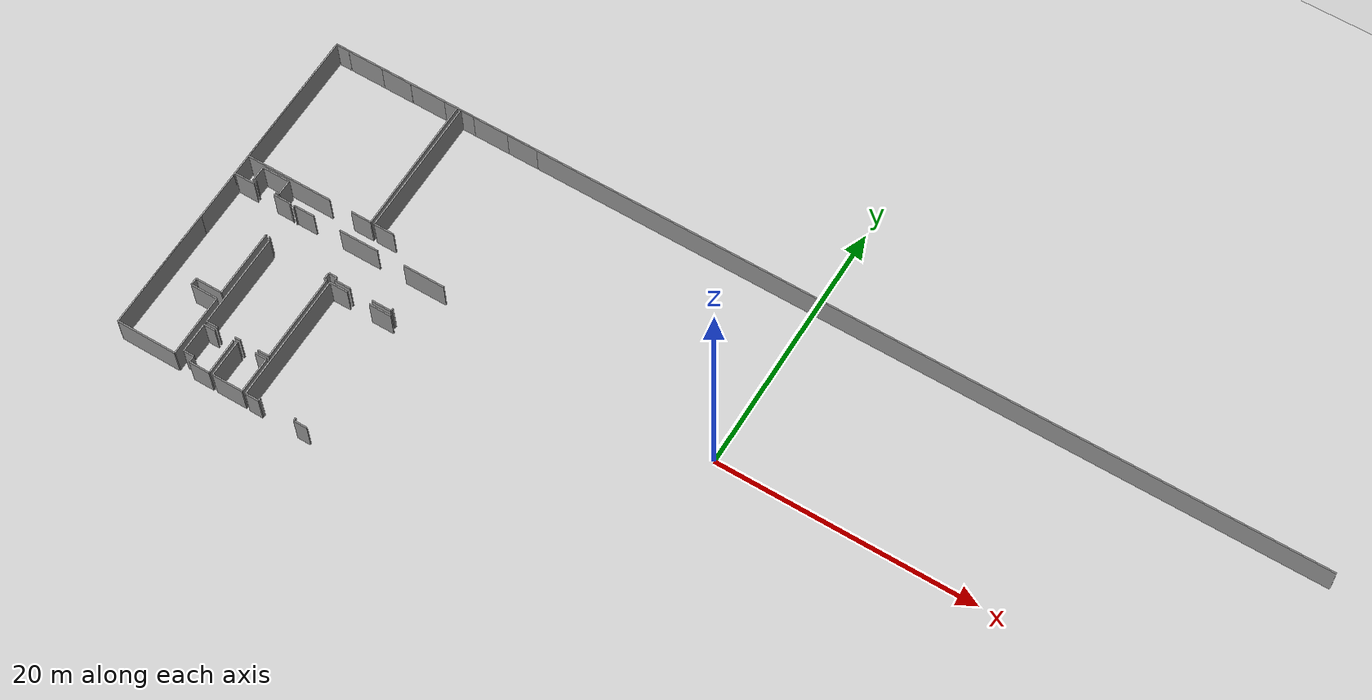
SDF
<sdf version="1.6">
 <world name="default">
  <model name="ground_plane">
   <static>1</static>
   <link name="link">
    <collision name="collision">
     <geometry><plane><normal>0 0 1</normal><size>100 100</size></plane></geometry>
     <surface><friction><ode><mu>100</mu><mu2>50</mu2></ode></friction></surface>
    </collision>
    <visual name="visual">
     <cast_shadows>0</cast_shadows>
     <geometry><plane><normal>0 0 1</normal><size>100 100</size></plane></geometry>
     <material>
      <script><uri>file://media/materials/scripts/gazebo.material</uri><name>Gazebo/Grey</name></script>
     </material>
    </visual>
   </link>
  </model>
  <model name="0510030968_A-40">
   <static>1</static>
   <link name="Wall_0">
    <collision name="Wall_0_Collision">
     <geometry><box><size>1.58504516178 0.1 2.5</size></box></geometry>
     <pose>0.792522580891 0 1.25 0 0 0</pose>
    </collision>
    <visual name="Wall_0_Visual">
     <pose>0.792522580891 0 1.25 0 0 0</pose>
     <geometry><box><size>1.58504516178 0.1 2.5</size></box></geometry>
     <material>
      <script><uri>file://media/materials/scripts/gazebo.material</uri><name>Gazebo/Grey</name></script>
      <ambient>1 1 1 1</ambient>
     </material>
    </visual>
    <pose>10.125385876 -10.6663109621 0 0 0 3.14159265359</pose>
   </link>
   <link name="Wall_1">
    <collision name="Wall_1_Collision">
     <geometry><box><size>6.75495763304 0.1 2.5</size></box></geometry>
     <pose>3.37747881652 0 1.25 0 0 0</pose>
    </collision>
    <visual name="Wall_1_Visual">
     <pose>3.37747881652 0 1.25 0 0 0</pose>
     <geometry><box><size>6.75495763304 0.1 2.5</size></box></geometry>
     <material>
      <script><uri>file://media/materials/scripts/gazebo.material</uri><name>Gazebo/Grey</name></script>
      <ambient>1 1 1 1</ambient>
     </material>
    </visual>
    <pose>6.76575580878 -10.6663109621 0 0 0 3.14159265359</pose>
   </link>
   <link name="Wall_2">
    <collision name="Wall_2_Collision">
     <geometry><box><size>10.658561683 0.1 2.5</size></box></geometry>
     <pose>5.3292808415 0 1.25 0 0 0</pose>
    </collision>
    <visual name="Wall_2_Visual">
     <pose>5.3292808415 0 1.25 0 0 0</pose>
     <geometry><box><size>10.658561683 0.1 2.5</size></box></geometry>
     <material>
      <script><uri>file://media/materials/scripts/gazebo.material</uri><name>Gazebo/Grey</name></script>
      <ambient>1 1 1 1</ambient>
     </material>
    </visual>
    <pose>0.0107981757435 -10.6663109621 0 0 0 1.57079632679</pose>
   </link>
   <link name="Wall_3">
    <collision name="Wall_3_Collision">
     <geometry><box><size>1.02646188244 0.1 2.5</size></box></geometry>
     <pose>0.51323094122 0 1.25 0 0 0</pose>
    </collision>
    <visual name="Wall_3_Visual">
     <pose>0.51323094122 0 1.25 0 0 0</pose>
     <geometry><box><size>1.02646188244 0.1 2.5</size></box></geometry>
     <material>
      <script><uri>file://media/materials/scripts/gazebo.material</uri><name>Gazebo/Grey</name></script>
      <ambient>1 1 1 1</ambient>
     </material>
    </visual>
    <pose>0.0107981757435 -0.00774927906297 0 0 0 0.0</pose>
   </link>
   <link name="Wall_4">
    <collision name="Wall_4_Collision">
     <geometry><box><size>2.39516241727 0.1 2.5</size></box></geometry>
     <pose>1.19758120863 0 1.25 0 0 0</pose>
    </collision>
    <visual name="Wall_4_Visual">
     <pose>1.19758120863 0 1.25 0 0 0</pose>
     <geometry><box><size>2.39516241727 0.1 2.5</size></box></geometry>
     <material>
      <script><uri>file://media/materials/scripts/gazebo.material</uri><name>Gazebo/Grey</name></script>
      <ambient>1 1 1 1</ambient>
     </material>
    </visual>
    <pose>3.835130912 -0.00774927906297 0 0 0 0.0</pose>
   </link>
   <link name="Wall_5">
    <collision name="Wall_5_Collision">
     <geometry><box><size>1.06546235248 0.1 2.5</size></box></geometry>
     <pose>0.532731176239 0 1.25 0 0 0</pose>
    </collision>
    <visual name="Wall_5_Visual">
     <pose>0.532731176239 0 1.25 0 0 0</pose>
     <geometry><box><size>1.06546235248 0.1 2.5</size></box></geometry>
     <material>
      <script><uri>file://media/materials/scripts/gazebo.material</uri><name>Gazebo/Grey</name></script>
      <ambient>1 1 1 1</ambient>
     </material>
    </visual>
    <pose>9.03680272368 -0.00774927906297 0 0 0 0.0</pose>
   </link>
   <link name="Wall_6">
    <collision name="Wall_6_Collision">
     <geometry><box><size>10.65858676 0.1 2.5</size></box></geometry>
     <pose>5.32929338002 0 1.25 0 0 0</pose>
    </collision>
    <visual name="Wall_6_Visual">
     <pose>5.32929338002 0 1.25 0 0 0</pose>
     <geometry><box><size>10.65858676 0.1 2.5</size></box></geometry>
     <material>
      <script><uri>file://media/materials/scripts/gazebo.material</uri><name>Gazebo/Grey</name></script>
      <ambient>1 1 1 1</ambient>
     </material>
    </visual>
    <pose>10.1022650762 -0.00774927906297 0 0 0 -1.56862710695</pose>
   </link>
   <link name="Wall_7">
    <collision name="Wall_7_Collision">
     <geometry><box><size>0.275925149586 0.1 2.5</size></box></geometry>
     <pose>0.137962574793 0 1.25 0 0 0</pose>
    </collision>
    <visual name="Wall_7_Visual">
     <pose>0.137962574793 0 1.25 0 0 0</pose>
     <geometry><box><size>0.275925149586 0.1 2.5</size></box></geometry>
     <material>
      <script><uri>file://media/materials/scripts/gazebo.material</uri><name>Gazebo/Grey</name></script>
      <ambient>1 1 1 1</ambient>
     </material>
    </visual>
    <pose>3.52630308574 -12.0571159978 0 0 0 3.14159265359</pose>
   </link>
   <link name="Wall_8">
    <collision name="Wall_8_Collision">
     <geometry><box><size>0.254074723376 0.1 2.5</size></box></geometry>
     <pose>0.127037361688 0 1.25 0 0 0</pose>
    </collision>
    <visual name="Wall_8_Visual">
     <pose>0.127037361688 0 1.25 0 0 0</pose>
     <geometry><box><size>0.254074723376 0.1 2.5</size></box></geometry>
     <material>
      <script><uri>file://media/materials/scripts/gazebo.material</uri><name>Gazebo/Grey</name></script>
      <ambient>1 1 1 1</ambient>
     </material>
    </visual>
    <pose>1.63382750867 -12.0571159978 0 0 0 3.14159265359</pose>
   </link>
   <link name="Wall_9">
    <collision name="Wall_9_Collision">
     <geometry><box><size>1.16505964404 0.1 2.5</size></box></geometry>
     <pose>0.582529822021 0 1.25 0 0 0</pose>
    </collision>
    <visual name="Wall_9_Visual">
     <pose>0.582529822021 0 1.25 0 0 0</pose>
     <geometry><box><size>1.16505964404 0.1 2.5</size></box></geometry>
     <material>
      <script><uri>file://media/materials/scripts/gazebo.material</uri><name>Gazebo/Grey</name></script>
      <ambient>1 1 1 1</ambient>
     </material>
    </visual>
    <pose>1.37975278529 -12.0571159978 0 0 0 1.57079632679</pose>
   </link>
   <link name="Wall_10">
    <collision name="Wall_10_Collision">
     <geometry><box><size>2.15404550478 0.1 2.5</size></box></geometry>
     <pose>1.07702275239 0 1.25 0 0 0</pose>
    </collision>
    <visual name="Wall_10_Visual">
     <pose>1.07702275239 0 1.25 0 0 0</pose>
     <geometry><box><size>2.15404550478 0.1 2.5</size></box></geometry>
     <material>
      <script><uri>file://media/materials/scripts/gazebo.material</uri><name>Gazebo/Grey</name></script>
      <ambient>1 1 1 1</ambient>
     </material>
    </visual>
    <pose>1.37975278529 -10.8920563538 0 0 0 0.0</pose>
   </link>
   <link name="Wall_11">
    <collision name="Wall_11_Collision">
     <geometry><box><size>1.16508375332 0.1 2.5</size></box></geometry>
     <pose>0.582541876662 0 1.25 0 0 0</pose>
    </collision>
    <visual name="Wall_11_Visual">
     <pose>0.582541876662 0 1.25 0 0 0</pose>
     <geometry><box><size>1.16508375332 0.1 2.5</size></box></geometry>
     <material>
      <script><uri>file://media/materials/scripts/gazebo.material</uri><name>Gazebo/Grey</name></script>
      <ambient>1 1 1 1</ambient>
     </material>
    </visual>
    <pose>3.53379829008 -10.8920563538 0 0 0 -1.57722956047</pose>
   </link>
   <link name="Wall_12">
    <collision name="Wall_12_Collision">
     <geometry><box><size>4.64728076527 0.1 2.5</size></box></geometry>
     <pose>2.32364038264 0 1.25 0 0 0</pose>
    </collision>
    <visual name="Wall_12_Visual">
     <pose>2.32364038264 0 1.25 0 0 0</pose>
     <geometry><box><size>4.64728076527 0.1 2.5</size></box></geometry>
     <material>
      <script><uri>file://media/materials/scripts/gazebo.material</uri><name>Gazebo/Grey</name></script>
      <ambient>1 1 1 1</ambient>
     </material>
    </visual>
    <pose>4.64728076527 -25.7094401463 0 0 0 3.14159265359</pose>
   </link>
   <link name="Wall_13">
    <collision name="Wall_13_Collision">
     <geometry><box><size>9.44433857998 0.1 2.5</size></box></geometry>
     <pose>4.72216928999 0 1.25 0 0 0</pose>
    </collision>
    <visual name="Wall_13_Visual">
     <pose>4.72216928999 0 1.25 0 0 0</pose>
     <geometry><box><size>9.44433857998 0.1 2.5</size></box></geometry>
     <material>
      <script><uri>file://media/materials/scripts/gazebo.material</uri><name>Gazebo/Grey</name></script>
      <ambient>1 1 1 1</ambient>
     </material>
    </visual>
    <pose>0.0 -25.7094401463 0 0 0 1.57079632679</pose>
   </link>
   <link name="Wall_14">
    <collision name="Wall_14_Collision">
     <geometry><box><size>0.189412706277 0.1 2.5</size></box></geometry>
     <pose>0.0947063531385 0 1.25 0 0 0</pose>
    </collision>
    <visual name="Wall_14_Visual">
     <pose>0.0947063531385 0 1.25 0 0 0</pose>
     <geometry><box><size>0.189412706277 0.1 2.5</size></box></geometry>
     <material>
      <script><uri>file://media/materials/scripts/gazebo.material</uri><name>Gazebo/Grey</name></script>
      <ambient>1 1 1 1</ambient>
     </material>
    </visual>
    <pose>0.0 -12.462873331 0 0 0 1.57079632679</pose>
   </link>
   <link name="Wall_15">
    <collision name="Wall_15_Collision">
     <geometry><box><size>1.63103268671 0.1 2.5</size></box></geometry>
     <pose>0.815516343357 0 1.25 0 0 0</pose>
    </collision>
    <visual name="Wall_15_Visual">
     <pose>0.815516343357 0 1.25 0 0 0</pose>
     <geometry><box><size>1.63103268671 0.1 2.5</size></box></geometry>
     <material>
      <script><uri>file://media/materials/scripts/gazebo.material</uri><name>Gazebo/Grey</name></script>
      <ambient>1 1 1 1</ambient>
     </material>
    </visual>
    <pose>0.0 -12.2734606248 0 0 0 0.0</pose>
   </link>
   <link name="Wall_16">
    <collision name="Wall_16_Collision">
     <geometry><box><size>1.37949871057 0.1 2.5</size></box></geometry>
     <pose>0.689749355285 0 1.25 0 0 0</pose>
    </collision>
    <visual name="Wall_16_Visual">
     <pose>0.689749355285 0 1.25 0 0 0</pose>
     <geometry><box><size>1.37949871057 0.1 2.5</size></box></geometry>
     <material>
      <script><uri>file://media/materials/scripts/gazebo.material</uri><name>Gazebo/Grey</name></script>
      <ambient>1 1 1 1</ambient>
     </material>
    </visual>
    <pose>3.24402606807 -12.2734606248 0 0 0 0.0</pose>
   </link>
   <link name="Wall_17">
    <collision name="Wall_17_Collision">
     <geometry><box><size>0.0923561619472 0.1 2.5</size></box></geometry>
     <pose>0.0461780809736 0 1.25 0 0 0</pose>
    </collision>
    <visual name="Wall_17_Visual">
     <pose>0.0461780809736 0 1.25 0 0 0</pose>
     <geometry><box><size>0.0923561619472 0.1 2.5</size></box></geometry>
     <material>
      <script><uri>file://media/materials/scripts/gazebo.material</uri><name>Gazebo/Grey</name></script>
      <ambient>1 1 1 1</ambient>
     </material>
    </visual>
    <pose>4.62352477864 -12.2734606248 0 0 0 -1.57079632679</pose>
   </link>
   <link name="Wall_18">
    <collision name="Wall_18_Collision">
     <geometry><box><size>5.23520967517 0.1 2.5</size></box></geometry>
     <pose>2.61760483758 0 1.25 0 0 0</pose>
    </collision>
    <visual name="Wall_18_Visual">
     <pose>2.61760483758 0 1.25 0 0 0</pose>
     <geometry><box><size>5.23520967517 0.1 2.5</size></box></geometry>
     <material>
      <script><uri>file://media/materials/scripts/gazebo.material</uri><name>Gazebo/Grey</name></script>
      <ambient>1 1 1 1</ambient>
     </material>
    </visual>
    <pose>4.62352477864 -15.132944599 0 0 0 -1.57079632679</pose>
   </link>
   <link name="Wall_19">
    <collision name="Wall_19_Collision">
     <geometry><box><size>2.06753306147 0.1 2.5</size></box></geometry>
     <pose>1.03376653074 0 1.25 0 0 0</pose>
    </collision>
    <visual name="Wall_19_Visual">
     <pose>1.03376653074 0 1.25 0 0 0</pose>
     <geometry><box><size>2.06753306147 0.1 2.5</size></box></geometry>
     <material>
      <script><uri>file://media/materials/scripts/gazebo.material</uri><name>Gazebo/Grey</name></script>
      <ambient>1 1 1 1</ambient>
     </material>
    </visual>
    <pose>4.62352477864 -20.3681542742 0 0 0 3.14159265359</pose>
   </link>
   <link name="Wall_20">
    <collision name="Wall_20_Collision">
     <geometry><box><size>0.538003226749 0.1 2.5</size></box></geometry>
     <pose>0.269001613374 0 1.25 0 0 0</pose>
    </collision>
    <visual name="Wall_20_Visual">
     <pose>0.269001613374 0 1.25 0 0 0</pose>
     <geometry><box><size>0.538003226749 0.1 2.5</size></box></geometry>
     <material>
      <script><uri>file://media/materials/scripts/gazebo.material</uri><name>Gazebo/Grey</name></script>
      <ambient>1 1 1 1</ambient>
     </material>
    </visual>
    <pose>2.55599171716 -20.3681542742 0 0 0 -1.57079632679</pose>
   </link>
   <link name="Wall_21">
    <collision name="Wall_21_Collision">
     <geometry><box><size>2.06524638896 0.1 2.5</size></box></geometry>
     <pose>1.03262319448 0 1.25 0 0 0</pose>
    </collision>
    <visual name="Wall_21_Visual">
     <pose>1.03262319448 0 1.25 0 0 0</pose>
     <geometry><box><size>2.06524638896 0.1 2.5</size></box></geometry>
     <material>
      <script><uri>file://media/materials/scripts/gazebo.material</uri><name>Gazebo/Grey</name></script>
      <ambient>1 1 1 1</ambient>
     </material>
    </visual>
    <pose>2.55599171716 -20.9061575009 0 0 0 0.0</pose>
   </link>
   <link name="Wall_22">
    <collision name="Wall_22_Collision">
     <geometry><box><size>4.80335324455 0.1 2.5</size></box></geometry>
     <pose>2.40167662228 0 1.25 0 0 0</pose>
    </collision>
    <visual name="Wall_22_Visual">
     <pose>2.40167662228 0 1.25 0 0 0</pose>
     <geometry><box><size>4.80335324455 0.1 2.5</size></box></geometry>
     <material>
      <script><uri>file://media/materials/scripts/gazebo.material</uri><name>Gazebo/Grey</name></script>
      <ambient>1 1 1 1</ambient>
     </material>
    </visual>
    <pose>4.62123810613 -20.9061575009 0 0 0 -1.56537453385</pose>
   </link>
   <link name="Wall_23">
    <collision name="Wall_23_Collision">
     <geometry><box><size>0.872111487989 0.1 2.5</size></box></geometry>
     <pose>0.436055743994 0 1.25 0 0 0</pose>
    </collision>
    <visual name="Wall_23_Visual">
     <pose>0.436055743994 0 1.25 0 0 0</pose>
     <geometry><box><size>0.872111487989 0.1 2.5</size></box></geometry>
     <material>
      <script><uri>file://media/materials/scripts/gazebo.material</uri><name>Gazebo/Grey</name></script>
      <ambient>1 1 1 1</ambient>
     </material>
    </visual>
    <pose>10.1187799332 -22.6656249603 0 0 0 3.14159265359</pose>
   </link>
   <link name="Wall_24">
    <collision name="Wall_24_Collision">
     <geometry><box><size>0.450347447184 0.1 2.5</size></box></geometry>
     <pose>0.225173723592 0 1.25 0 0 0</pose>
    </collision>
    <visual name="Wall_24_Visual">
     <pose>0.225173723592 0 1.25 0 0 0</pose>
     <geometry><box><size>0.450347447184 0.1 2.5</size></box></geometry>
     <material>
      <script><uri>file://media/materials/scripts/gazebo.material</uri><name>Gazebo/Grey</name></script>
      <ambient>1 1 1 1</ambient>
     </material>
    </visual>
    <pose>7.83350483377 -22.6656249603 0 0 0 3.14159265359</pose>
   </link>
   <link name="Wall_25">
    <collision name="Wall_25_Collision">
     <geometry><box><size>0.868681479223 0.1 2.5</size></box></geometry>
     <pose>0.434340739612 0 1.25 0 0 0</pose>
    </collision>
    <visual name="Wall_25_Visual">
     <pose>0.434340739612 0 1.25 0 0 0</pose>
     <geometry><box><size>0.868681479223 0.1 2.5</size></box></geometry>
     <material>
      <script><uri>file://media/materials/scripts/gazebo.material</uri><name>Gazebo/Grey</name></script>
      <ambient>1 1 1 1</ambient>
     </material>
    </visual>
    <pose>5.93886962156 -22.6656249603 0 0 0 3.14159265359</pose>
   </link>
   <link name="Wall_26">
    <collision name="Wall_26_Collision">
     <geometry><box><size>7.22372549767 0.1 2.5</size></box></geometry>
     <pose>3.61186274883 0 1.25 0 0 0</pose>
    </collision>
    <visual name="Wall_26_Visual">
     <pose>3.61186274883 0 1.25 0 0 0</pose>
     <geometry><box><size>7.22372549767 0.1 2.5</size></box></geometry>
     <material>
      <script><uri>file://media/materials/scripts/gazebo.material</uri><name>Gazebo/Grey</name></script>
      <ambient>1 1 1 1</ambient>
     </material>
    </visual>
    <pose>5.07018814233 -22.6656249603 0 0 0 1.57079632679</pose>
   </link>
   <link name="Wall_27">
    <collision name="Wall_27_Collision">
     <geometry><box><size>0.461018585566 0.1 2.5</size></box></geometry>
     <pose>0.230509292783 0 1.25 0 0 0</pose>
    </collision>
    <visual name="Wall_27_Visual">
     <pose>0.230509292783 0 1.25 0 0 0</pose>
     <geometry><box><size>0.461018585566 0.1 2.5</size></box></geometry>
     <material>
      <script><uri>file://media/materials/scripts/gazebo.material</uri><name>Gazebo/Grey</name></script>
      <ambient>1 1 1 1</ambient>
     </material>
    </visual>
    <pose>9.9320350115 -15.4418994626 0 0 0 -1.57079632679</pose>
   </link>
   <link name="Wall_28">
    <collision name="Wall_28_Collision">
     <geometry><box><size>0.186744921681 0.1 2.5</size></box></geometry>
     <pose>0.0933724608407 0 1.25 0 0 0</pose>
    </collision>
    <visual name="Wall_28_Visual">
     <pose>0.0933724608407 0 1.25 0 0 0</pose>
     <geometry><box><size>0.186744921681 0.1 2.5</size></box></geometry>
     <material>
      <script><uri>file://media/materials/scripts/gazebo.material</uri><name>Gazebo/Grey</name></script>
      <ambient>1 1 1 1</ambient>
     </material>
    </visual>
    <pose>9.9320350115 -15.9029180482 0 0 0 0.0</pose>
   </link>
   <link name="Wall_29">
    <collision name="Wall_29_Collision">
     <geometry><box><size>6.7627069121 0.1 2.5</size></box></geometry>
     <pose>3.38135345605 0 1.25 0 0 0</pose>
    </collision>
    <visual name="Wall_29_Visual">
     <pose>3.38135345605 0 1.25 0 0 0</pose>
     <geometry><box><size>6.7627069121 0.1 2.5</size></box></geometry>
     <material>
      <script><uri>file://media/materials/scripts/gazebo.material</uri><name>Gazebo/Grey</name></script>
      <ambient>1 1 1 1</ambient>
     </material>
    </visual>
    <pose>10.1187799332 -15.9029180482 0 0 0 -1.57079632679</pose>
   </link>
   <link name="Wall_30">
    <collision name="Wall_30_Collision">
     <geometry><box><size>0.105059898116 0.1 2.5</size></box></geometry>
     <pose>0.052529949058 0 1.25 0 0 0</pose>
    </collision>
    <visual name="Wall_30_Visual">
     <pose>0.052529949058 0 1.25 0 0 0</pose>
     <geometry><box><size>0.105059898116 0.1 2.5</size></box></geometry>
     <material>
      <script><uri>file://media/materials/scripts/gazebo.material</uri><name>Gazebo/Grey</name></script>
      <ambient>1 1 1 1</ambient>
     </material>
    </visual>
    <pose>4.94607263996 -15.2543923168 0 0 0 1.57079632679</pose>
   </link>
   <link name="Wall_31">
    <collision name="Wall_31_Collision">
     <geometry><box><size>0.116239185945 0.1 2.5</size></box></geometry>
     <pose>0.0581195929723 0 1.25 0 0 0</pose>
    </collision>
    <visual name="Wall_31_Visual">
     <pose>0.0581195929723 0 1.25 0 0 0</pose>
     <geometry><box><size>0.116239185945 0.1 2.5</size></box></geometry>
     <material>
      <script><uri>file://media/materials/scripts/gazebo.material</uri><name>Gazebo/Grey</name></script>
      <ambient>1 1 1 1</ambient>
     </material>
    </visual>
    <pose>4.94607263996 -12.3912242591 0 0 0 1.57079632679</pose>
   </link>
   <link name="Wall_32">
    <collision name="Wall_32_Collision">
     <geometry><box><size>1.62366451974 0.1 2.5</size></box></geometry>
     <pose>0.811832259868 0 1.25 0 0 0</pose>
    </collision>
    <visual name="Wall_32_Visual">
     <pose>0.811832259868 0 1.25 0 0 0</pose>
     <geometry><box><size>1.62366451974 0.1 2.5</size></box></geometry>
     <material>
      <script><uri>file://media/materials/scripts/gazebo.material</uri><name>Gazebo/Grey</name></script>
      <ambient>1 1 1 1</ambient>
     </material>
    </visual>
    <pose>4.94607263996 -12.2749850731 0 0 0 0.0</pose>
   </link>
   <link name="Wall_33">
    <collision name="Wall_33_Collision">
     <geometry><box><size>3.08345084289 0.1 2.5</size></box></geometry>
     <pose>1.54172542145 0 1.25 0 0 0</pose>
    </collision>
    <visual name="Wall_33_Visual">
     <pose>1.54172542145 0 1.25 0 0 0</pose>
     <geometry><box><size>3.08345084289 0.1 2.5</size></box></geometry>
     <material>
      <script><uri>file://media/materials/scripts/gazebo.material</uri><name>Gazebo/Grey</name></script>
      <ambient>1 1 1 1</ambient>
     </material>
    </visual>
    <pose>8.69405592185 -12.2749850731 0 0 0 0.0</pose>
   </link>
   <link name="Wall_34">
    <collision name="Wall_34_Collision">
     <geometry><box><size>3.24682089002 0.1 2.5</size></box></geometry>
     <pose>1.62341044501 0 1.25 0 0 0</pose>
    </collision>
    <visual name="Wall_34_Visual">
     <pose>1.62341044501 0 1.25 0 0 0</pose>
     <geometry><box><size>3.24682089002 0.1 2.5</size></box></geometry>
     <material>
      <script><uri>file://media/materials/scripts/gazebo.material</uri><name>Gazebo/Grey</name></script>
      <ambient>1 1 1 1</ambient>
     </material>
    </visual>
    <pose>13.9004281159 -12.2749850731 0 0 0 0.0</pose>
   </link>
   <link name="Wall_90">
    <collision name="Wall_90_Collision">
     <geometry><box><size>0.22574539172 0.1 2.5</size></box></geometry>
     <pose>0.11287269586 0 1.25 0 0 0</pose>
    </collision>
    <visual name="Wall_90_Visual">
     <pose>0.11287269586 0 1.25 0 0 0</pose>
     <geometry><box><size>0.22574539172 0.1 2.5</size></box></geometry>
     <material>
      <script><uri>file://media/materials/scripts/gazebo.material</uri><name>Gazebo/Grey</name></script>
      <ambient>1 1 1 1</ambient>
     </material>
    </visual>
    <pose>15.1408209154 -15.4015015816 0 0 0 -1.57079632679</pose>
   </link>
   <link name="Wall_91">
    <collision name="Wall_91_Collision">
     <geometry><box><size>1.52851353583 0.1 2.5</size></box></geometry>
     <pose>0.764256767915 0 1.25 0 0 0</pose>
    </collision>
    <visual name="Wall_91_Visual">
     <pose>0.764256767915 0 1.25 0 0 0</pose>
     <geometry><box><size>1.52851353583 0.1 2.5</size></box></geometry>
     <material>
      <script><uri>file://media/materials/scripts/gazebo.material</uri><name>Gazebo/Grey</name></script>
      <ambient>1 1 1 1</ambient>
     </material>
    </visual>
    <pose>15.1408209154 -15.6272469733 0 0 0 3.14159265359</pose>
   </link>
   <link name="Wall_92">
    <collision name="Wall_92_Collision">
     <geometry><box><size>1.28142586735 0.1 2.5</size></box></geometry>
     <pose>0.640712933674 0 1.25 0 0 0</pose>
    </collision>
    <visual name="Wall_92_Visual">
     <pose>0.640712933674 0 1.25 0 0 0</pose>
     <geometry><box><size>1.28142586735 0.1 2.5</size></box></geometry>
     <material>
      <script><uri>file://media/materials/scripts/gazebo.material</uri><name>Gazebo/Grey</name></script>
      <ambient>1 1 1 1</ambient>
     </material>
    </visual>
    <pose>11.8410254456 -15.6272469733 0 0 0 3.14159265359</pose>
   </link>
   <link name="Wall_93">
    <collision name="Wall_93_Collision">
     <geometry><box><size>0.243530622356 0.1 2.5</size></box></geometry>
     <pose>0.121765311178 0 1.25 0 0 0</pose>
    </collision>
    <visual name="Wall_93_Visual">
     <pose>0.121765311178 0 1.25 0 0 0</pose>
     <geometry><box><size>0.243530622356 0.1 2.5</size></box></geometry>
     <material>
      <script><uri>file://media/materials/scripts/gazebo.material</uri><name>Gazebo/Grey</name></script>
      <ambient>1 1 1 1</ambient>
     </material>
    </visual>
    <pose>10.5595995782 -15.6272469733 0 0 0 1.57079632679</pose>
   </link>
   <link name="Wall_94">
    <collision name="Wall_94_Collision">
     <geometry><box><size>0.626929379931 0.1 2.5</size></box></geometry>
     <pose>0.313464689965 0 1.25 0 0 0</pose>
    </collision>
    <visual name="Wall_94_Visual">
     <pose>0.313464689965 0 1.25 0 0 0</pose>
     <geometry><box><size>0.626929379931 0.1 2.5</size></box></geometry>
     <material>
      <script><uri>file://media/materials/scripts/gazebo.material</uri><name>Gazebo/Grey</name></script>
      <ambient>1 1 1 1</ambient>
     </material>
    </visual>
    <pose>10.5595995782 -15.383716351 0 0 0 3.14159265359</pose>
   </link>
   <link name="Wall_95">
    <collision name="Wall_95_Collision">
     <geometry><box><size>0.179246656174 0.1 2.5</size></box></geometry>
     <pose>0.0896233280872 0 1.25 0 0 0</pose>
    </collision>
    <visual name="Wall_95_Visual">
     <pose>0.0896233280872 0 1.25 0 0 0</pose>
     <geometry><box><size>0.179246656174 0.1 2.5</size></box></geometry>
     <material>
      <script><uri>file://media/materials/scripts/gazebo.material</uri><name>Gazebo/Grey</name></script>
      <ambient>1 1 1 1</ambient>
     </material>
    </visual>
    <pose>5.07018814233 -15.383716351 0 0 0 2.33564600437</pose>
   </link>
   <link name="Wall_96">
    <collision name="Wall_96_Collision">
     <geometry><box><size>2.38233164374 0.1 2.5</size></box></geometry>
     <pose>1.19116582187 0 1.25 0 0 0</pose>
    </collision>
    <visual name="Wall_96_Visual">
     <pose>1.19116582187 0 1.25 0 0 0</pose>
     <geometry><box><size>2.38233164374 0.1 2.5</size></box></geometry>
     <material>
      <script><uri>file://media/materials/scripts/gazebo.material</uri><name>Gazebo/Grey</name></script>
      <ambient>1 1 1 1</ambient>
     </material>
    </visual>
    <pose>10.1214477178 -25.7123620057 0 0 0 3.14159265359</pose>
   </link>
   <link name="Wall_97">
    <collision name="Wall_97_Collision">
     <geometry><box><size>2.78808897697 0.1 2.5</size></box></geometry>
     <pose>1.39404448848 0 1.25 0 0 0</pose>
    </collision>
    <visual name="Wall_97_Visual">
     <pose>1.39404448848 0 1.25 0 0 0</pose>
     <geometry><box><size>2.78808897697 0.1 2.5</size></box></geometry>
     <material>
      <script><uri>file://media/materials/scripts/gazebo.material</uri><name>Gazebo/Grey</name></script>
      <ambient>1 1 1 1</ambient>
     </material>
    </visual>
    <pose>7.73911607404 -25.7123620057 0 0 0 1.57079632679</pose>
   </link>
   <link name="Wall_98">
    <collision name="Wall_98_Collision">
     <geometry><box><size>0.0677109137797 0.1 2.5</size></box></geometry>
     <pose>0.0338554568899 0 1.25 0 0 0</pose>
    </collision>
    <visual name="Wall_98_Visual">
     <pose>0.0338554568899 0 1.25 0 0 0</pose>
     <geometry><box><size>0.0677109137797 0.1 2.5</size></box></geometry>
     <material>
      <script><uri>file://media/materials/scripts/gazebo.material</uri><name>Gazebo/Grey</name></script>
      <ambient>1 1 1 1</ambient>
     </material>
    </visual>
    <pose>7.73911607404 -22.9242730287 0 0 0 0.0</pose>
   </link>
   <link name="Wall_99">
    <collision name="Wall_99_Collision">
     <geometry><box><size>0.922418283217 0.1 2.5</size></box></geometry>
     <pose>0.461209141609 0 1.25 0 0 0</pose>
    </collision>
    <visual name="Wall_99_Visual">
     <pose>0.461209141609 0 1.25 0 0 0</pose>
     <geometry><box><size>0.922418283217 0.1 2.5</size></box></geometry>
     <material>
      <script><uri>file://media/materials/scripts/gazebo.material</uri><name>Gazebo/Grey</name></script>
      <ambient>1 1 1 1</ambient>
     </material>
    </visual>
    <pose>9.19178830494 -22.9242730287 0 0 0 0.0</pose>
   </link>
   <link name="Wall_100">
    <collision name="Wall_100_Collision">
     <geometry><box><size>2.78809838016 0.1 2.5</size></box></geometry>
     <pose>1.39404919008 0 1.25 0 0 0</pose>
    </collision>
    <visual name="Wall_100_Visual">
     <pose>1.39404919008 0 1.25 0 0 0</pose>
     <geometry><box><size>2.78809838016 0.1 2.5</size></box></geometry>
     <material>
      <script><uri>file://media/materials/scripts/gazebo.material</uri><name>Gazebo/Grey</name></script>
      <ambient>1 1 1 1</ambient>
     </material>
    </visual>
    <pose>10.1142065882 -22.9242730287 0 0 0 -1.56819916673</pose>
   </link>
   <link name="Wall_101">
    <collision name="Wall_101_Collision">
     <geometry><box><size>1.60219520561 0.1 2.5</size></box></geometry>
     <pose>0.801097602805 0 1.25 0 0 0</pose>
    </collision>
    <visual name="Wall_101_Visual">
     <pose>0.801097602805 0 1.25 0 0 0</pose>
     <geometry><box><size>1.60219520561 0.1 2.5</size></box></geometry>
     <material>
      <script><uri>file://media/materials/scripts/gazebo.material</uri><name>Gazebo/Grey</name></script>
      <ambient>1 1 1 1</ambient>
     </material>
    </visual>
    <pose>7.46458833543 -25.7282416759 0 0 0 3.14159265359</pose>
   </link>
   <link name="Wall_102">
    <collision name="Wall_102_Collision">
     <geometry><box><size>0.4831230865 0.1 2.5</size></box></geometry>
     <pose>0.24156154325 0 1.25 0 0 0</pose>
    </collision>
    <visual name="Wall_102_Visual">
     <pose>0.24156154325 0 1.25 0 0 0</pose>
     <geometry><box><size>0.4831230865 0.1 2.5</size></box></geometry>
     <material>
      <script><uri>file://media/materials/scripts/gazebo.material</uri><name>Gazebo/Grey</name></script>
      <ambient>1 1 1 1</ambient>
     </material>
    </visual>
    <pose>5.86239312982 -25.7282416759 0 0 0 1.57079632679</pose>
   </link>
   <link name="Wall_103">
    <collision name="Wall_103_Collision">
     <geometry><box><size>0.801859826975 0.1 2.5</size></box></geometry>
     <pose>0.400929913488 0 1.25 0 0 0</pose>
    </collision>
    <visual name="Wall_103_Visual">
     <pose>0.400929913488 0 1.25 0 0 0</pose>
     <geometry><box><size>0.801859826975 0.1 2.5</size></box></geometry>
     <material>
      <script><uri>file://media/materials/scripts/gazebo.material</uri><name>Gazebo/Grey</name></script>
      <ambient>1 1 1 1</ambient>
     </material>
    </visual>
    <pose>5.86239312982 -25.2451185894 0 0 0 3.14159265359</pose>
   </link>
   <link name="Wall_104">
    <collision name="Wall_104_Collision">
     <geometry><box><size>2.31030145966 0.1 2.5</size></box></geometry>
     <pose>1.15515072983 0 1.25 0 0 0</pose>
    </collision>
    <visual name="Wall_104_Visual">
     <pose>1.15515072983 0 1.25 0 0 0</pose>
     <geometry><box><size>2.31030145966 0.1 2.5</size></box></geometry>
     <material>
      <script><uri>file://media/materials/scripts/gazebo.material</uri><name>Gazebo/Grey</name></script>
      <ambient>1 1 1 1</ambient>
     </material>
    </visual>
    <pose>5.06053330284 -25.2451185894 0 0 0 1.57079632679</pose>
   </link>
   <link name="Wall_105">
    <collision name="Wall_105_Collision">
     <geometry><box><size>0.877828169265 0.1 2.5</size></box></geometry>
     <pose>0.438914084632 0 1.25 0 0 0</pose>
    </collision>
    <visual name="Wall_105_Visual">
     <pose>0.438914084632 0 1.25 0 0 0</pose>
     <geometry><box><size>0.877828169265 0.1 2.5</size></box></geometry>
     <material>
      <script><uri>file://media/materials/scripts/gazebo.material</uri><name>Gazebo/Grey</name></script>
      <ambient>1 1 1 1</ambient>
     </material>
    </visual>
    <pose>5.06053330284 -22.9348171297 0 0 0 0.0</pose>
   </link>
   <link name="Wall_106">
    <collision name="Wall_106_Collision">
     <geometry><box><size>0.0713949972687 0.1 2.5</size></box></geometry>
     <pose>0.0356974986343 0 1.25 0 0 0</pose>
    </collision>
    <visual name="Wall_106_Visual">
     <pose>0.0356974986343 0 1.25 0 0 0</pose>
     <geometry><box><size>0.0713949972687 0.1 2.5</size></box></geometry>
     <material>
      <script><uri>file://media/materials/scripts/gazebo.material</uri><name>Gazebo/Grey</name></script>
      <ambient>1 1 1 1</ambient>
     </material>
    </visual>
    <pose>7.37820292948 -22.9348171297 0 0 0 0.0</pose>
   </link>
   <link name="Wall_107">
    <collision name="Wall_107_Collision">
     <geometry><box><size>2.79346476753 0.1 2.5</size></box></geometry>
     <pose>1.39673238377 0 1.25 0 0 0</pose>
    </collision>
    <visual name="Wall_107_Visual">
     <pose>1.39673238377 0 1.25 0 0 0</pose>
     <geometry><box><size>2.79346476753 0.1 2.5</size></box></geometry>
     <material>
      <script><uri>file://media/materials/scripts/gazebo.material</uri><name>Gazebo/Grey</name></script>
      <ambient>1 1 1 1</ambient>
     </material>
    </visual>
    <pose>7.44959792675 -22.9348171297 0 0 0 -1.56543005878</pose>
   </link>
   <link name="Wall_108">
    <collision name="Wall_108_Collision">
     <geometry><box><size>1.05618862507 0.1 2.5</size></box></geometry>
     <pose>0.528094312537 0 1.25 0 0 0</pose>
    </collision>
    <visual name="Wall_108_Visual">
     <pose>0.528094312537 0 1.25 0 0 0</pose>
     <geometry><box><size>1.05618862507 0.1 2.5</size></box></geometry>
     <material>
      <script><uri>file://media/materials/scripts/gazebo.material</uri><name>Gazebo/Grey</name></script>
      <ambient>1 1 1 1</ambient>
     </material>
    </visual>
    <pose>15.3146080262 -25.7145216408 0 0 0 3.14159265359</pose>
   </link>
   <link name="Wall_109">
    <collision name="Wall_109_Collision">
     <geometry><box><size>0.214312029168 0.1 2.5</size></box></geometry>
     <pose>0.107156014584 0 1.25 0 0 0</pose>
    </collision>
    <visual name="Wall_109_Visual">
     <pose>0.107156014584 0 1.25 0 0 0</pose>
     <geometry><box><size>0.214312029168 0.1 2.5</size></box></geometry>
     <material>
      <script><uri>file://media/materials/scripts/gazebo.material</uri><name>Gazebo/Grey</name></script>
      <ambient>1 1 1 1</ambient>
     </material>
    </visual>
    <pose>14.2584194011 -25.7145216408 0 0 0 1.57079632679</pose>
   </link>
   <link name="Wall_110">
    <collision name="Wall_110_Collision">
     <geometry><box><size>0.225491316996 0.1 2.5</size></box></geometry>
     <pose>0.112745658498 0 1.25 0 0 0</pose>
    </collision>
    <visual name="Wall_110_Visual">
     <pose>0.112745658498 0 1.25 0 0 0</pose>
     <geometry><box><size>0.225491316996 0.1 2.5</size></box></geometry>
     <material>
      <script><uri>file://media/materials/scripts/gazebo.material</uri><name>Gazebo/Grey</name></script>
      <ambient>1 1 1 1</ambient>
     </material>
    </visual>
    <pose>11.4433985035 -25.5002096116 0 0 0 -1.57079632679</pose>
   </link>
   <link name="Wall_111">
    <collision name="Wall_111_Collision">
     <geometry><box><size>1.03573560984 0.1 2.5</size></box></geometry>
     <pose>0.517867804921 0 1.25 0 0 0</pose>
    </collision>
    <visual name="Wall_111_Visual">
     <pose>0.517867804921 0 1.25 0 0 0</pose>
     <geometry><box><size>1.03573560984 0.1 2.5</size></box></geometry>
     <material>
      <script><uri>file://media/materials/scripts/gazebo.material</uri><name>Gazebo/Grey</name></script>
      <ambient>1 1 1 1</ambient>
     </material>
    </visual>
    <pose>11.4433985035 -25.7257009286 0 0 0 3.14159265359</pose>
   </link>
   <link name="Wall_112">
    <collision name="Wall_112_Collision">
     <geometry><box><size>9.78988020377 0.1 2.5</size></box></geometry>
     <pose>4.89494010188 0 1.25 0 0 0</pose>
    </collision>
    <visual name="Wall_112_Visual">
     <pose>4.89494010188 0 1.25 0 0 0</pose>
     <geometry><box><size>9.78988020377 0.1 2.5</size></box></geometry>
     <material>
      <script><uri>file://media/materials/scripts/gazebo.material</uri><name>Gazebo/Grey</name></script>
      <ambient>1 1 1 1</ambient>
     </material>
    </visual>
    <pose>10.4076628937 -25.7257009286 0 0 0 1.57079632679</pose>
   </link>
   <link name="Wall_113">
    <collision name="Wall_113_Collision">
     <geometry><box><size>1.42078585312 0.1 2.5</size></box></geometry>
     <pose>0.71039292656 0 1.25 0 0 0</pose>
    </collision>
    <visual name="Wall_113_Visual">
     <pose>0.71039292656 0 1.25 0 0 0</pose>
     <geometry><box><size>1.42078585312 0.1 2.5</size></box></geometry>
     <material>
      <script><uri>file://media/materials/scripts/gazebo.material</uri><name>Gazebo/Grey</name></script>
      <ambient>1 1 1 1</ambient>
     </material>
    </visual>
    <pose>10.4076628937 -15.9358207249 0 0 0 0.0</pose>
   </link>
   <link name="Wall_114">
    <collision name="Wall_114_Collision">
     <geometry><box><size>1.73863333206 0.1 2.5</size></box></geometry>
     <pose>0.869316666031 0 1.25 0 0 0</pose>
    </collision>
    <visual name="Wall_114_Visual">
     <pose>0.869316666031 0 1.25 0 0 0</pose>
     <geometry><box><size>1.73863333206 0.1 2.5</size></box></geometry>
     <material>
      <script><uri>file://media/materials/scripts/gazebo.material</uri><name>Gazebo/Grey</name></script>
      <ambient>1 1 1 1</ambient>
     </material>
    </visual>
    <pose>13.6026525401 -15.9358207249 0 0 0 0.0</pose>
   </link>
   <link name="Wall_190">
    <collision name="Wall_190_Collision">
     <geometry><box><size>1.57970959259 0.1 2.5</size></box></geometry>
     <pose>0.789854796296 0 1.25 0 0 0</pose>
    </collision>
    <visual name="Wall_190_Visual">
     <pose>0.789854796296 0 1.25 0 0 0</pose>
     <geometry><box><size>1.57970959259 0.1 2.5</size></box></geometry>
     <material>
      <script><uri>file://media/materials/scripts/gazebo.material</uri><name>Gazebo/Grey</name></script>
      <ambient>1 1 1 1</ambient>
     </material>
    </visual>
    <pose>11.9845776643 -10.6487798061 0 0 0 3.14159265359</pose>
   </link>
   <link name="Wall_191">
    <collision name="Wall_191_Collision">
     <geometry><box><size>10.6487798061 0.1 2.5</size></box></geometry>
     <pose>5.32438990307 0 1.25 0 0 0</pose>
    </collision>
    <visual name="Wall_191_Visual">
     <pose>5.32438990307 0 1.25 0 0 0</pose>
     <geometry><box><size>10.6487798061 0.1 2.5</size></box></geometry>
     <material>
      <script><uri>file://media/materials/scripts/gazebo.material</uri><name>Gazebo/Grey</name></script>
      <ambient>1 1 1 1</ambient>
     </material>
    </visual>
    <pose>10.4048680717 -10.6487798061 0 0 0 1.57079632679</pose>
   </link>
   <link name="Wall_192">
    <collision name="Wall_192_Collision">
     <geometry><box><size>1.04945564491 0.1 2.5</size></box></geometry>
     <pose>0.524727822453 0 1.25 0 0 0</pose>
    </collision>
    <visual name="Wall_192_Visual">
     <pose>0.524727822453 0 1.25 0 0 0</pose>
     <geometry><box><size>1.04945564491 0.1 2.5</size></box></geometry>
     <material>
      <script><uri>file://media/materials/scripts/gazebo.material</uri><name>Gazebo/Grey</name></script>
      <ambient>1 1 1 1</ambient>
     </material>
    </visual>
    <pose>10.4048680717 -0.0 0 0 0 0.0</pose>
   </link>
   <link name="Wall_193">
    <collision name="Wall_193_Collision">
     <geometry><box><size>2.39694094033 0.1 2.5</size></box></geometry>
     <pose>1.19847047017 0 1.25 0 0 0</pose>
    </collision>
    <visual name="Wall_193_Visual">
     <pose>1.19847047017 0 1.25 0 0 0</pose>
     <geometry><box><size>2.39694094033 0.1 2.5</size></box></geometry>
     <material>
      <script><uri>file://media/materials/scripts/gazebo.material</uri><name>Gazebo/Grey</name></script>
      <ambient>1 1 1 1</ambient>
     </material>
    </visual>
    <pose>14.247113076 -0.0 0 0 0 0.0</pose>
   </link>
   <link name="Wall_327">
    <collision name="Wall_327_Collision">
     <geometry><box><size>25.7399291132 0.1 2.5</size></box></geometry>
     <pose>12.8699645566 0 1.25 0 0 0</pose>
    </collision>
    <visual name="Wall_327_Visual">
     <pose>12.8699645566 0 1.25 0 0 0</pose>
     <geometry><box><size>25.7399291132 0.1 2.5</size></box></geometry>
     <material>
      <script><uri>file://media/materials/scripts/gazebo.material</uri><name>Gazebo/Grey</name></script>
      <ambient>1 1 1 1</ambient>
     </material>
    </visual>
    <pose>0.0 -25.7399291132 0 0 0 1.57079632679</pose>
   </link>
   <link name="Wall_328">
    <collision name="Wall_328_Collision">
     <geometry><box><size>77.5469085458 0.1 2.5</size></box></geometry>
     <pose>38.7734542729 0 1.25 0 0 0</pose>
    </collision>
    <visual name="Wall_328_Visual">
     <pose>38.7734542729 0 1.25 0 0 0</pose>
     <geometry><box><size>77.5469085458 0.1 2.5</size></box></geometry>
     <material>
      <script><uri>file://media/materials/scripts/gazebo.material</uri><name>Gazebo/Grey</name></script>
      <ambient>1 1 1 1</ambient>
     </material>
    </visual>
   </link>
   <pose>-38.75 12.8899291132 0 0 0 0</pose>
  </model>
 </world>
</sdf>
